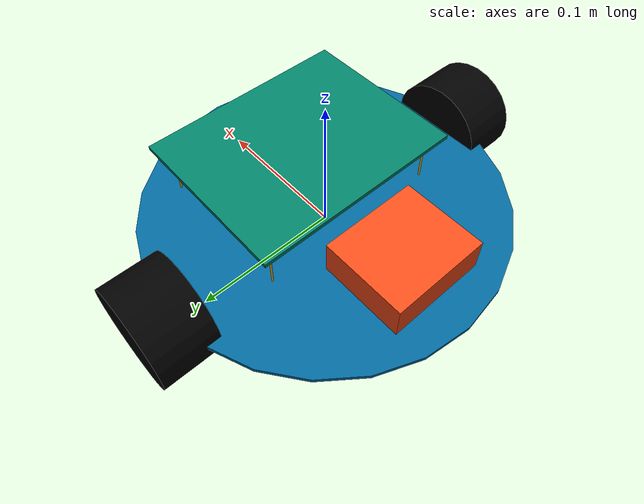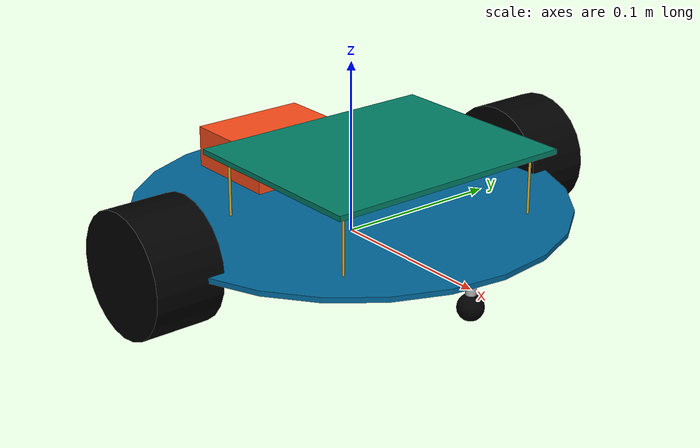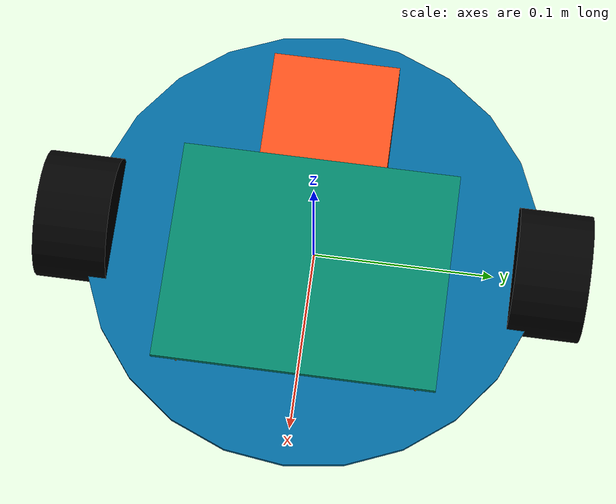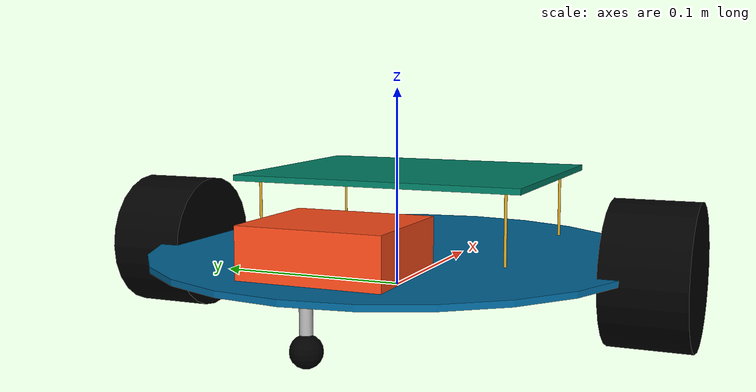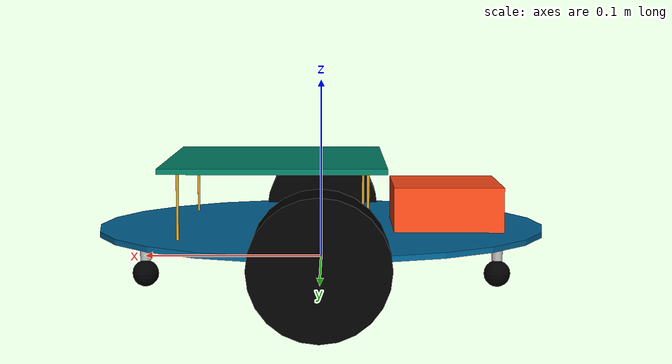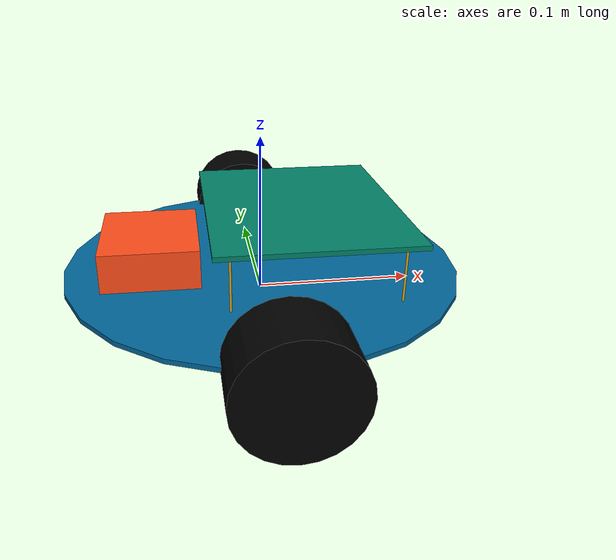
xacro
<?xml version="1.0"?>
<robot xmlns:xacro="http://www.ros.org/wiki/xacro"  name="robot">

    <xacro:include filename="robot_core.xacro"/>
    <xacro:include filename="gazebo_control.xacro"/>
</robot>

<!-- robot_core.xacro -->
<robot xmlns:xacro="http://www.ros.org/wiki/xacro">
    <xacro:include filename="inertial_macros.xacro"/>

    <!-- [Keep all your material definitions - same as before] -->
    <material name="white">
        <color rgba="1 1 1 1" />
    </material>
    <material name="orange">
        <color rgba="1 0.3 0.1 1"/>
    </material>
    <material name="blue">
        <color rgba="0.2 0.2 1 1"/>
    </material>
    <material name="black">
        <color rgba="0 0 0 1"/>
    </material>
    <material name="grey">
        <color rgba="0.7 0.7 0.7 1"/>
    </material>
    <material name="peacock_blue">
        <color rgba="0.0 0.4 0.6 1"/>
    </material>
    <material name="peacock_green">
        <color rgba="0.0 0.5 0.4 1"/>
    </material>
    <material name="peacock_dark_blue">
        <color rgba="0.0 0.2 0.4 1"/>
    </material>
    <material name="peacock_teal">
        <color rgba="0.0 0.5 0.5 1"/>
    </material>
    <material name="peacock_gold">
        <color rgba="0.85 0.65 0.13 1"/>
    </material>
    <material name="peacock_purple">
        <color rgba="0.5 0.0 0.5 1"/>
    </material>
    <material name="peacock_turquoise">
        <color rgba="0.25 0.88 0.82 1"/>
    </material>

    <!-- BASE LINK-->
    <link name="base_link">
    </link>

    <!--CHASSIS LINK-->
    <joint name="chassis_joint" type="fixed">
        <parent link="base_link"/>
        <child link="chassis"/>
        <origin xyz="-0.125 0 0.015"/>
    </joint>

    <link name="chassis">
        <visual>
            <origin xyz="0.125 0 0.0015"/>
            <geometry>
                <cylinder radius="0.125" length="0.003"/>
            </geometry>
            <material name="peacock_blue"/>
        </visual>
        <collision>
            <origin xyz="0.125 0 0.0015"/>
            <geometry>
                <cylinder radius="0.125" length="0.003"/>
            </geometry>
        </collision>
        <xacro:inertial_cylinder mass="1.5" radius="0.125" length="0.003">
            <origin xyz="0.14 0 -0.01" rpy="0 0 0"/>
        </xacro:inertial_cylinder>
    </link>
    <gazebo reference="chassis">
        <material>Gazebo/Blue</material>
    </gazebo>

    <!--LEFT WHEEL LINK-->
    <joint name="left_wheel_joint" type="continuous">
        <parent link="chassis"/>
        <child link="left_wheel"/>
        <origin xyz="0.125 0.13 0" rpy="-1.5708 0 0"/>
        <axis xyz="0 0 1"/>
    </joint>

    <link name="left_wheel">
        <visual>
            <geometry>
                <cylinder radius="0.035" length="0.04"/>
            </geometry>
            <material name="black"/>
        </visual>
        <collision>
            <geometry>
                <cylinder radius="0.035" length="0.04"/>
            </geometry>
        </collision>
        <xacro:inertial_cylinder mass="0.15" radius="0.035" length="0.04">
            <origin xyz="0 0 0" rpy="0 0 0"/>
        </xacro:inertial_cylinder>
    </link>
    <gazebo reference="left_wheel">
        <material>Gazebo/Black</material>
        <mu1>1.2</mu1>
        <mu2>1.2</mu2>
        <kp>1000000.0</kp>
        <kd>100.0</kd>
    </gazebo>

    <!--RIGHT WHEEL LINK-->
    <joint name="right_wheel_joint" type="continuous">
        <parent link="chassis"/>
        <child link="right_wheel"/>
        <origin xyz="0.125 -0.13 0" rpy="1.5708 0 0"/>
        <axis xyz="0 0 -1"/>
    </joint>

    <link name="right_wheel">
        <visual>
            <geometry>
                <cylinder radius="0.035" length="0.04"/>
            </geometry>
            <material name="black"/>
        </visual>
        <collision>
            <geometry>
                <cylinder radius="0.035" length="0.04"/>
            </geometry>
        </collision>
        <xacro:inertial_cylinder mass="0.15" radius="0.035" length="0.04">
            <origin xyz="0 0 0" rpy="0 0 0"/>
        </xacro:inertial_cylinder>
    </link>
    <gazebo reference="right_wheel">
        <material>Gazebo/Black</material>
        <mu1>1.2</mu1>
        <mu2>1.2</mu2>
        <kp>1000000.0</kp>
        <kd>100.0</kd>
    </gazebo>

    <!--CASTER SPACER 1 - Small cylinder to drop caster down-->
    <joint name="caster_spacer_joint1" type="fixed">
        <parent link="chassis"/>
        <child link="caster_spacer1"/>
        <origin xyz="0.025 0 -0.0075"/>
    </joint>

    <link name="caster_spacer1">
        <visual>
            <geometry>
                <cylinder radius="0.003" length="0.02"/>  <!-- Small spacer: 3mm radius, 20mm length -->
            </geometry>
            <material name="grey"/>
        </visual>
        <collision>
            <geometry>
                <cylinder radius="0.003" length="0.02"/>
            </geometry>
        </collision>
        <xacro:inertial_cylinder mass="0.01" radius="0.003" length="0.02">
            <origin xyz="0 0 0" rpy="0 0 0"/>
        </xacro:inertial_cylinder>
    </link>
    <gazebo reference="caster_spacer1">
        <material>Gazebo/Grey</material>
    </gazebo>

    <!--CASTER WHEEL LINK1 - Attached to bottom of spacer-->
    <joint name="caster_wheel_joint1" type="fixed">
        <parent link="caster_spacer1"/>
        <child link="caster_wheel1"/>
        <origin xyz="0 0 -0.0175"/>  <!-- Half spacer length (0.01) + half caster radius (0.0075) -->
    </joint>

    <link name="caster_wheel1">
        <visual>
            <geometry>
                <sphere radius="0.0075"/>
            </geometry>
            <material name="black"/>
        </visual>
        <collision>
            <geometry>
                <sphere radius="0.0075"/>
            </geometry>
        </collision>
        <xacro:inertial_sphere mass="0.05" radius="0.0075">
            <origin xyz="0 0 0" rpy="0 0 0"/>
        </xacro:inertial_sphere>
    </link>
    <gazebo reference="caster_wheel1">
        <material>Gazebo/Black</material>
        <mu1 value="0.001"/>
        <mu2 value="0.001"/>
    </gazebo>

    <!--CASTER SPACER 2 - Small cylinder to drop caster down-->
    <joint name="caster_spacer_joint2" type="fixed">
        <parent link="chassis"/>
        <child link="caster_spacer2"/>
        <origin xyz="0.225 0 -0.0075"/>
    </joint>

    <link name="caster_spacer2">
        <visual>
            <geometry>
                <cylinder radius="0.003" length="0.02"/>  <!-- Small spacer: 3mm radius, 20mm length -->
            </geometry>
            <material name="grey"/>
        </visual>
        <collision>
            <geometry>
                <cylinder radius="0.003" length="0.02"/>
            </geometry>
        </collision>
        <xacro:inertial_cylinder mass="0.01" radius="0.003" length="0.02">
            <origin xyz="0 0 0" rpy="0 0 0"/>
        </xacro:inertial_cylinder>
    </link>
    <gazebo reference="caster_spacer2">
        <material>Gazebo/Grey</material>
    </gazebo>

    <!--CASTER WHEEL LINK2 - Attached to bottom of spacer-->
    <joint name="caster_wheel_joint2" type="fixed">
        <parent link="caster_spacer2"/>
        <child link="caster_wheel2"/>
        <origin xyz="0 0 -0.0175"/>  <!-- Half spacer length (0.01) + half caster radius (0.0075) -->
    </joint>

    <link name="caster_wheel2">
        <visual>
            <geometry>
                <sphere radius="0.0075"/>
            </geometry>
            <material name="black"/>
        </visual>
        <collision>
            <geometry>
                <sphere radius="0.0075"/>
            </geometry>
        </collision>
        <xacro:inertial_sphere mass="0.05" radius="0.0075">
            <origin xyz="0 0 0" rpy="0 0 0"/>
        </xacro:inertial_sphere>
    </link>
    <gazebo reference="caster_wheel2">
        <material>Gazebo/Black</material>
        <mu1 value="0.001"/>
        <mu2 value="0.001"/>
    </gazebo>

    <!-- SPACERS - 4 cylindrical supports for upper layer -->

    <joint name="spacer_joint_1" type="fixed">
        <parent link="chassis"/>
        <child link="spacer_1"/>
        <origin xyz="0.1 0.065 0.02" rpy="0 0 0"/>
    </joint>

    <link name="spacer_1">
        <visual>
            <geometry>
                <cylinder radius="0.0007" length="0.04"/>
            </geometry>
            <material name="peacock_gold"/>
        </visual>
        <collision>
            <geometry>
                <cylinder radius="0.0007" length="0.04"/>
            </geometry>
        </collision>
        <xacro:inertial_cylinder mass="0.005" radius="0.0007" length="0.04">
            <origin xyz="0 0 0" rpy="0 0 0"/>
        </xacro:inertial_cylinder>
    </link>
    <gazebo reference="spacer_1">
        <material>Gazebo/Turquoise</material>
    </gazebo>

    <joint name="spacer_joint_2" type="fixed">
        <parent link="chassis"/>
        <child link="spacer_2"/>
        <origin xyz="0.1 -0.065 0.02" rpy="0 0 0"/>
    </joint>

    <link name="spacer_2">
        <visual>
            <geometry>
                <cylinder radius="0.0007" length="0.04"/>
            </geometry>
            <material name="peacock_gold"/>
        </visual>
        <collision>
            <geometry>
                <cylinder radius="0.0007" length="0.04"/>
            </geometry>
        </collision>
        <xacro:inertial_cylinder mass="0.005" radius="0.0007" length="0.04">
            <origin xyz="0 0 0" rpy="0 0 0"/>
        </xacro:inertial_cylinder>
    </link>
    <gazebo reference="spacer_2">
        <material>Gazebo/Turquoise</material>
    </gazebo>

    <joint name="spacer_joint_3" type="fixed">
        <parent link="chassis"/>
        <child link="spacer_3"/>
        <origin xyz="0.2 0.065 0.02" rpy="0 0 0"/>
    </joint>

    <link name="spacer_3">
        <visual>
            <geometry>
                <cylinder radius="0.0007" length="0.04"/>
            </geometry>
            <material name="peacock_gold"/>
        </visual>
        <collision>
            <geometry>
                <cylinder radius="0.0007" length="0.04"/>
            </geometry>
        </collision>
        <xacro:inertial_cylinder mass="0.005" radius="0.0007" length="0.04">
            <origin xyz="0 0 0" rpy="0 0 0"/>
        </xacro:inertial_cylinder>
    </link>
    <gazebo reference="spacer_3">
        <material>Gazebo/Turquoise</material>
    </gazebo>

    <joint name="spacer_joint_4" type="fixed">
        <parent link="chassis"/>
        <child link="spacer_4"/>
        <origin xyz="0.2 -0.065 0.02" rpy="0 0 0"/>
    </joint>

    <link name="spacer_4">
        <visual>
            <geometry>
                <cylinder radius="0.0007" length="0.04"/>
            </geometry>
            <material name="peacock_gold"/>
        </visual>
        <collision>
            <geometry>
                <cylinder radius="0.0007" length="0.04"/>
            </geometry>
        </collision>
        <xacro:inertial_cylinder mass="0.005" radius="0.0007" length="0.04">
            <origin xyz="0 0 0" rpy="0 0 0"/>
        </xacro:inertial_cylinder>
    </link>
    <gazebo reference="spacer_4">
        <material>Gazebo/Turquoise</material>
    </gazebo>

    <!-- UPPER PLATE -->
    <joint name="upper_plate_joint" type="fixed">
        <parent link="chassis"/>
        <child link="upper_plate"/>
        <origin xyz="0.15 0 0.04" rpy="0 0 0"/>
    </joint>

    <link name="upper_plate">
        <visual>
            <geometry>
                <box size="0.12 0.15 0.003"/>
            </geometry>
            <material name="peacock_green"/>
        </visual>
        <collision>
            <geometry>
                <box size="0.12 0.15 0.003"/>
            </geometry>
        </collision>
        <xacro:inertial_box mass="0.1" x="0.12" y="0.15" z="0.003">
            <origin xyz="0 0 0" rpy="0 0 0"/>
        </xacro:inertial_box>
    </link>

    <gazebo reference="upper_plate">
        <material>Gazebo/Green</material>
    </gazebo>

    <!-- BATTERY LINK - ABOVE chassis -->
    <joint name="battery_joint" type="fixed">
        <parent link="chassis"/>
        <child link="battery"/>
        <origin xyz="0.055 0 0.015"/>
    </joint>

    <link name="battery">
        <visual>
            <geometry>
                <box size="0.06 0.07 0.025"/>
            </geometry>
            <material name="orange"/>
        </visual>
        <collision>
            <geometry>
                <box size="0.06 0.07 0.025"/>
            </geometry>
        </collision>
        <xacro:inertial_box mass="0.35" x="0.06" y="0.07" z="0.025">
            <origin xyz="0 0 0" rpy="0 0 0"/>
        </xacro:inertial_box>
    </link>

    <gazebo reference="battery">
        <material>Gazebo/Orange</material>
    </gazebo>

</robot>
